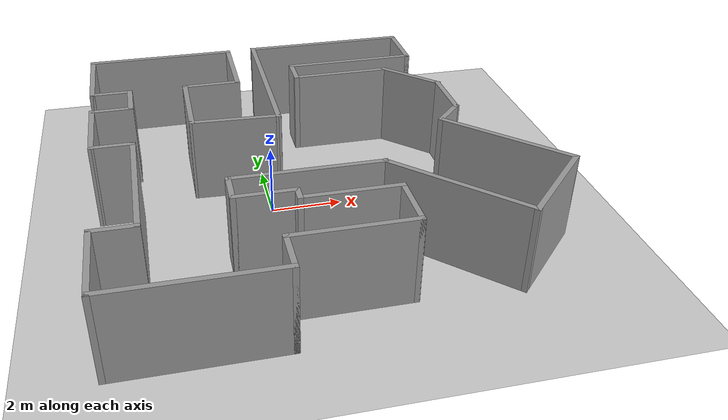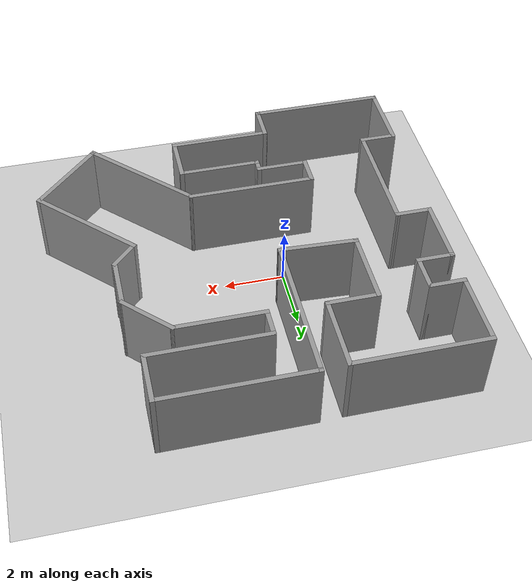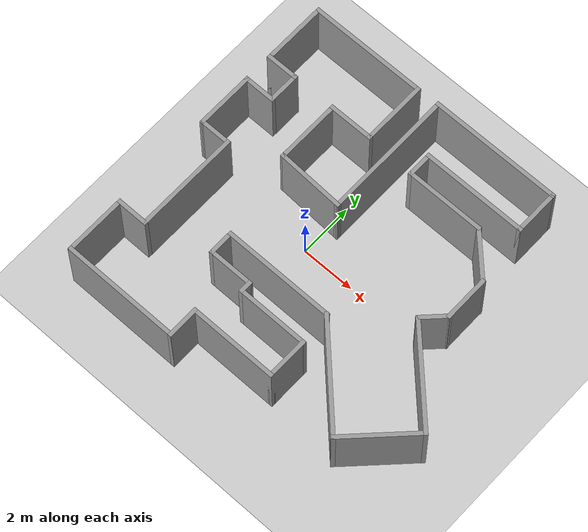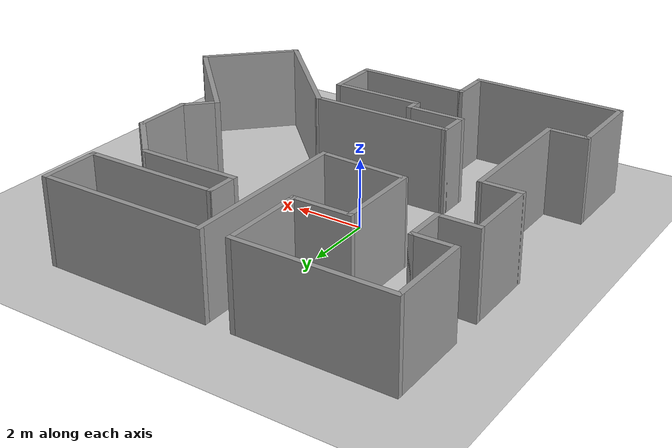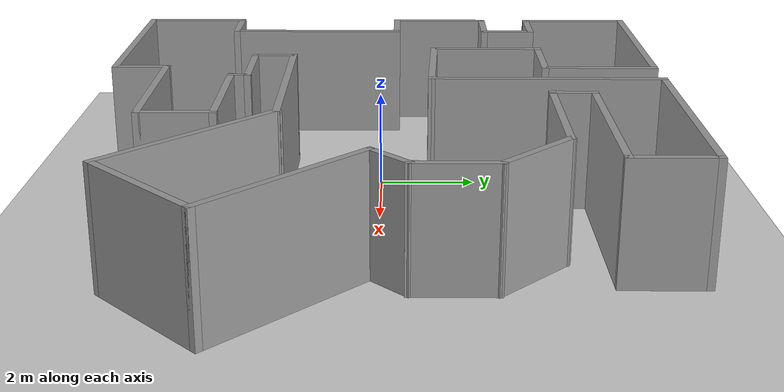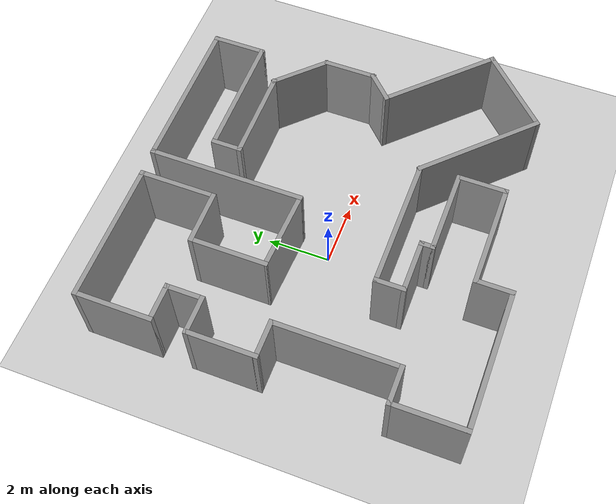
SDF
<sdf version="1.6">
 <world name="default">
  <light name="sun" type="directional">
   <pose>0 0 10 0 -0 0</pose>
   <diffuse>0.8 0.8 0.8 1</diffuse>
   <specular>0.1 0.1 0.1 1</specular>
   <attenuation>
    <range>1000</range>
    <constant>0.9</constant>
    <linear>0.01</linear>
    <quadratic>0.001</quadratic>
   </attenuation>
   <direction>-0.5 0.5 -1</direction>
  </light>
  <model name="ground_plane">
   <static>1</static>
   <link name="link">
    <collision name="collision">
     <geometry><plane><normal>0 0 1</normal><size>100 100</size></plane></geometry>
     <surface><friction><ode><mu>100</mu><mu2>50</mu2></ode></friction></surface>
    </collision>
    <visual name="visual">
     <cast_shadows>0</cast_shadows>
     <geometry><plane><normal>0 0 1</normal><size>100 100</size></plane></geometry>
     <material>
      <script><uri>file://media/materials/scripts/gazebo.material</uri><name>Gazebo/Grey</name></script>
     </material>
    </visual>
   </link>
  </model>
  <gravity>0 0 -9.8</gravity>
  <magnetic_field>6e-06 2.3e-05 -4.2e-05</magnetic_field>
  <atmosphere type="adiabatic"/>
  <physics name="default_physics" default="0" type="ode">
   <max_step_size>0.001</max_step_size>
   <real_time_factor>1</real_time_factor>
   <real_time_update_rate>1000</real_time_update_rate>
  </physics>
  <scene><ambient>0.4 0.4 0.4 1</ambient><background>0.7 0.7 0.7 1</background><shadows>1</shadows></scene>
  <spherical_coordinates>
   <surface_model>EARTH_WGS84</surface_model>
   <latitude_deg>0</latitude_deg>
   <longitude_deg>0</longitude_deg>
   <elevation>0</elevation>
   <heading_deg>0</heading_deg>
  </spherical_coordinates>
  <model name="map1">
   <pose>1.43298 0.085804 0 0 -0 0</pose>
   <link name="Wall_0">
    <collision name="Wall_0_Collision">
     <geometry><box><size>4.5 0.15 2.5</size></box></geometry>
     <pose>0 0 1.25 0 -0 0</pose>
    </collision>
    <visual name="Wall_0_Visual">
     <pose>0 0 1.25 0 -0 0</pose>
     <geometry><box><size>4.5 0.15 2.5</size></box></geometry>
     <material>
      <script><uri>file://media/materials/scripts/gazebo.material</uri><name>Gazebo/Grey</name></script>
      <ambient>1 1 1 1</ambient>
     </material>
    </visual>
    <pose>-4.03512 5.79408 0 0 -0 3.14159</pose>
   </link>
   <link name="Wall_1">
    <collision name="Wall_1_Collision">
     <geometry><box><size>2.5 0.15 2.5</size></box></geometry>
     <pose>0 0 1.25 0 -0 0</pose>
    </collision>
    <visual name="Wall_1_Visual">
     <pose>0 0 1.25 0 -0 0</pose>
     <geometry><box><size>2.5 0.15 2.5</size></box></geometry>
     <material>
      <script><uri>file://media/materials/scripts/gazebo.material</uri><name>Gazebo/Grey</name></script>
      <ambient>1 1 1 1</ambient>
     </material>
    </visual>
    <pose>-6.21012 4.61908 0 0 0 -1.5708</pose>
   </link>
   <link name="Wall_10">
    <collision name="Wall_10_Collision">
     <geometry><box><size>1.25 0.15 2.5</size></box></geometry>
     <pose>0 0 1.25 0 -0 0</pose>
    </collision>
    <visual name="Wall_10_Visual">
     <pose>0 0 1.25 0 -0 0</pose>
     <geometry><box><size>1.25 0.15 2.5</size></box></geometry>
     <material>
      <script><uri>file://media/materials/scripts/gazebo.material</uri><name>Gazebo/Grey</name></script>
      <ambient>1 1 1 1</ambient>
     </material>
    </visual>
    <pose>-5.66007 -3.6055 0 0 -0 3.14159</pose>
   </link>
   <link name="Wall_12">
    <collision name="Wall_12_Collision">
     <geometry><box><size>2.375 0.15 2.5</size></box></geometry>
     <pose>0 0 1.25 0 -0 0</pose>
    </collision>
    <visual name="Wall_12_Visual">
     <pose>0 0 1.25 0 -0 0</pose>
     <geometry><box><size>2.375 0.15 2.5</size></box></geometry>
     <material>
      <script><uri>file://media/materials/scripts/gazebo.material</uri><name>Gazebo/Grey</name></script>
      <ambient>1 1 1 1</ambient>
     </material>
    </visual>
    <pose>-6.21007 -4.718 0 0 0 -1.5708</pose>
   </link>
   <link name="Wall_14">
    <collision name="Wall_14_Collision">
     <geometry><box><size>4.5 0.15 2.5</size></box></geometry>
     <pose>0 0 1.25 0 -0 0</pose>
    </collision>
    <visual name="Wall_14_Visual">
     <pose>0 0 1.25 0 -0 0</pose>
     <geometry><box><size>4.5 0.15 2.5</size></box></geometry>
     <material>
      <script><uri>file://media/materials/scripts/gazebo.material</uri><name>Gazebo/Grey</name></script>
      <ambient>1 1 1 1</ambient>
     </material>
    </visual>
    <pose>-4.03507 -5.8305 0 0 -0 0</pose>
   </link>
   <link name="Wall_16">
    <collision name="Wall_16_Collision">
     <geometry><box><size>1.25 0.15 2.5</size></box></geometry>
     <pose>0 0 1.25 0 -0 0</pose>
    </collision>
    <visual name="Wall_16_Visual">
     <pose>0 0 1.25 0 -0 0</pose>
     <geometry><box><size>1.25 0.15 2.5</size></box></geometry>
     <material>
      <script><uri>file://media/materials/scripts/gazebo.material</uri><name>Gazebo/Grey</name></script>
      <ambient>1 1 1 1</ambient>
     </material>
    </visual>
    <pose>-1.86007 -5.2805 0 0 -0 1.5708</pose>
   </link>
   <link name="Wall_18">
    <collision name="Wall_18_Collision">
     <geometry><box><size>3.375 0.15 2.5</size></box></geometry>
     <pose>0 0 1.25 0 -0 0</pose>
    </collision>
    <visual name="Wall_18_Visual">
     <pose>0 0 1.25 0 -0 0</pose>
     <geometry><box><size>3.375 0.15 2.5</size></box></geometry>
     <material>
      <script><uri>file://media/materials/scripts/gazebo.material</uri><name>Gazebo/Grey</name></script>
      <ambient>1 1 1 1</ambient>
     </material>
    </visual>
    <pose>-0.247569 -4.7305 0 0 -0 0</pose>
   </link>
   <link name="Wall_2">
    <collision name="Wall_2_Collision">
     <geometry><box><size>1.25 0.15 2.5</size></box></geometry>
     <pose>0 0 1.25 0 -0 0</pose>
    </collision>
    <visual name="Wall_2_Visual">
     <pose>0 0 1.25 0 -0 0</pose>
     <geometry><box><size>1.25 0.15 2.5</size></box></geometry>
     <material>
      <script><uri>file://media/materials/scripts/gazebo.material</uri><name>Gazebo/Grey</name></script>
      <ambient>1 1 1 1</ambient>
     </material>
    </visual>
    <pose>-5.66012 3.44408 0 0 -0 0</pose>
   </link>
   <link name="Wall_20">
    <collision name="Wall_20_Collision">
     <geometry><box><size>1.625 0.15 2.5</size></box></geometry>
     <pose>0 0 1.25 0 -0 0</pose>
    </collision>
    <visual name="Wall_20_Visual">
     <pose>0 0 1.25 0 -0 0</pose>
     <geometry><box><size>1.625 0.15 2.5</size></box></geometry>
     <material>
      <script><uri>file://media/materials/scripts/gazebo.material</uri><name>Gazebo/Grey</name></script>
      <ambient>1 1 1 1</ambient>
     </material>
    </visual>
    <pose>1.36493 -3.993 0 0 -0 1.5708</pose>
   </link>
   <link name="Wall_22">
    <collision name="Wall_22_Collision">
     <geometry><box><size>2.75 0.15 2.5</size></box></geometry>
     <pose>0 0 1.25 0 -0 0</pose>
    </collision>
    <visual name="Wall_22_Visual">
     <pose>0 0 1.25 0 -0 0</pose>
     <geometry><box><size>2.75 0.15 2.5</size></box></geometry>
     <material>
      <script><uri>file://media/materials/scripts/gazebo.material</uri><name>Gazebo/Grey</name></script>
      <ambient>1 1 1 1</ambient>
     </material>
    </visual>
    <pose>0.064931 -3.2555 0 0 -0 3.14159</pose>
   </link>
   <link name="Wall_24">
    <collision name="Wall_24_Collision">
     <geometry><box><size>0.5 0.15 2.5</size></box></geometry>
     <pose>0 0 1.25 0 -0 0</pose>
    </collision>
    <visual name="Wall_24_Visual">
     <pose>0 0 1.25 0 -0 0</pose>
     <geometry><box><size>0.5 0.15 2.5</size></box></geometry>
     <material>
      <script><uri>file://media/materials/scripts/gazebo.material</uri><name>Gazebo/Grey</name></script>
      <ambient>1 1 1 1</ambient>
     </material>
    </visual>
    <pose>-1.23507 -3.0805 0 0 -0 1.5708</pose>
   </link>
   <link name="Wall_26">
    <collision name="Wall_26_Collision">
     <geometry><box><size>1.75 0.15 2.5</size></box></geometry>
     <pose>0 0 1.25 0 -0 0</pose>
    </collision>
    <visual name="Wall_26_Visual">
     <pose>0 0 1.25 0 -0 0</pose>
     <geometry><box><size>1.75 0.15 2.5</size></box></geometry>
     <material>
      <script><uri>file://media/materials/scripts/gazebo.material</uri><name>Gazebo/Grey</name></script>
      <ambient>1 1 1 1</ambient>
     </material>
    </visual>
    <pose>-2.03507 -2.9055 0 0 -0 3.14159</pose>
   </link>
   <link name="Wall_28">
    <collision name="Wall_28_Collision">
     <geometry><box><size>1 0.15 2.5</size></box></geometry>
     <pose>0 0 1.25 0 -0 0</pose>
    </collision>
    <visual name="Wall_28_Visual">
     <pose>0 0 1.25 0 -0 0</pose>
     <geometry><box><size>1 0.15 2.5</size></box></geometry>
     <material>
      <script><uri>file://media/materials/scripts/gazebo.material</uri><name>Gazebo/Grey</name></script>
      <ambient>1 1 1 1</ambient>
     </material>
    </visual>
    <pose>-2.83507 -2.4805 0 0 -0 1.5708</pose>
   </link>
   <link name="Wall_3">
    <collision name="Wall_3_Collision">
     <geometry><box><size>1.25 0.15 2.5</size></box></geometry>
     <pose>0 0 1.25 0 -0 0</pose>
    </collision>
    <visual name="Wall_3_Visual">
     <pose>0 0 1.25 0 -0 0</pose>
     <geometry><box><size>1.25 0.15 2.5</size></box></geometry>
     <material>
      <script><uri>file://media/materials/scripts/gazebo.material</uri><name>Gazebo/Grey</name></script>
      <ambient>1 1 1 1</ambient>
     </material>
    </visual>
    <pose>-5.11012 2.89408 0 0 0 -1.5708</pose>
   </link>
   <link name="Wall_30">
    <collision name="Wall_30_Collision">
     <geometry><box><size>4.25 0.15 2.5</size></box></geometry>
     <pose>0 0 1.25 0 -0 0</pose>
    </collision>
    <visual name="Wall_30_Visual">
     <pose>0 0 1.25 0 -0 0</pose>
     <geometry><box><size>4.25 0.15 2.5</size></box></geometry>
     <material>
      <script><uri>file://media/materials/scripts/gazebo.material</uri><name>Gazebo/Grey</name></script>
      <ambient>1 1 1 1</ambient>
     </material>
    </visual>
    <pose>-0.785069 -2.0555 0 0 -0 0</pose>
   </link>
   <link name="Wall_32">
    <collision name="Wall_32_Collision">
     <geometry><box><size>4.25 0.15 2.5</size></box></geometry>
     <pose>0 0 1.25 0 -0 0</pose>
    </collision>
    <visual name="Wall_32_Visual">
     <pose>0 0 1.25 0 -0 0</pose>
     <geometry><box><size>4.25 0.15 2.5</size></box></geometry>
     <material>
      <script><uri>file://media/materials/scripts/gazebo.material</uri><name>Gazebo/Grey</name></script>
      <ambient>1 1 1 1</ambient>
     </material>
    </visual>
    <pose>2.71443 -3.505 0 0 0 -0.785398</pose>
   </link>
   <link name="Wall_34">
    <collision name="Wall_34_Collision">
     <geometry><box><size>3 0.15 2.5</size></box></geometry>
     <pose>0 0 1.25 0 -0 0</pose>
    </collision>
    <visual name="Wall_34_Visual">
     <pose>0 0 1.25 0 -0 0</pose>
     <geometry><box><size>3 0.15 2.5</size></box></geometry>
     <material>
      <script><uri>file://media/materials/scripts/gazebo.material</uri><name>Gazebo/Grey</name></script>
      <ambient>1 1 1 1</ambient>
     </material>
    </visual>
    <pose>5.17143 -3.947 0 0 -0 0.785398</pose>
   </link>
   <link name="Wall_36">
    <collision name="Wall_36_Collision">
     <geometry><box><size>4 0.15 2.5</size></box></geometry>
     <pose>0 0 1.25 0 -0 0</pose>
    </collision>
    <visual name="Wall_36_Visual">
     <pose>0 0 1.25 0 -0 0</pose>
     <geometry><box><size>4 0.15 2.5</size></box></geometry>
     <material>
      <script><uri>file://media/materials/scripts/gazebo.material</uri><name>Gazebo/Grey</name></script>
      <ambient>1 1 1 1</ambient>
     </material>
    </visual>
    <pose>4.81775 -1.57832 0 0 -0 2.35619</pose>
   </link>
   <link name="Wall_38">
    <collision name="Wall_38_Collision">
     <geometry><box><size>1.125 0.15 2.5</size></box></geometry>
     <pose>0 0 1.25 0 -0 0</pose>
    </collision>
    <visual name="Wall_38_Visual">
     <pose>0 0 1.25 0 -0 0</pose>
     <geometry><box><size>1.125 0.15 2.5</size></box></geometry>
     <material>
      <script><uri>file://media/materials/scripts/gazebo.material</uri><name>Gazebo/Grey</name></script>
      <ambient>1 1 1 1</ambient>
     </material>
    </visual>
    <pose>3.80129 0.127576 0 0 -0 0.785398</pose>
   </link>
   <link name="Wall_4">
    <collision name="Wall_4_Collision">
     <geometry><box><size>1.25 0.15 2.5</size></box></geometry>
     <pose>0 0 1.25 0 -0 0</pose>
    </collision>
    <visual name="Wall_4_Visual">
     <pose>0 0 1.25 0 -0 0</pose>
     <geometry><box><size>1.25 0.15 2.5</size></box></geometry>
     <material>
      <script><uri>file://media/materials/scripts/gazebo.material</uri><name>Gazebo/Grey</name></script>
      <ambient>1 1 1 1</ambient>
     </material>
    </visual>
    <pose>-5.66012 2.34408 0 0 -0 3.14159</pose>
   </link>
   <link name="Wall_40">
    <collision name="Wall_40_Collision">
     <geometry><box><size>1.75 0.15 2.5</size></box></geometry>
     <pose>0 0 1.25 0 -0 0</pose>
    </collision>
    <visual name="Wall_40_Visual">
     <pose>0 0 1.25 0 -0 0</pose>
     <geometry><box><size>1.75 0.15 2.5</size></box></geometry>
     <material>
      <script><uri>file://media/materials/scripts/gazebo.material</uri><name>Gazebo/Grey</name></script>
      <ambient>1 1 1 1</ambient>
     </material>
    </visual>
    <pose>4.146 1.27229 0 0 -0 1.5708</pose>
   </link>
   <link name="Wall_42">
    <collision name="Wall_42_Collision">
     <geometry><box><size>2 0.15 2.5</size></box></geometry>
     <pose>0 0 1.25 0 -0 0</pose>
    </collision>
    <visual name="Wall_42_Visual">
     <pose>0 0 1.25 0 -0 0</pose>
     <geometry><box><size>2 0.15 2.5</size></box></geometry>
     <material>
      <script><uri>file://media/materials/scripts/gazebo.material</uri><name>Gazebo/Grey</name></script>
      <ambient>1 1 1 1</ambient>
     </material>
    </visual>
    <pose>3.49193 2.72636 0 0 -0 2.35619</pose>
   </link>
   <link name="Wall_44">
    <collision name="Wall_44_Collision">
     <geometry><box><size>3 0.15 2.5</size></box></geometry>
     <pose>0 0 1.25 0 -0 0</pose>
    </collision>
    <visual name="Wall_44_Visual">
     <pose>0 0 1.25 0 -0 0</pose>
     <geometry><box><size>3 0.15 2.5</size></box></geometry>
     <material>
      <script><uri>file://media/materials/scripts/gazebo.material</uri><name>Gazebo/Grey</name></script>
      <ambient>1 1 1 1</ambient>
     </material>
    </visual>
    <pose>1.41289 3.38047 0 0 -0 3.14157</pose>
   </link>
   <link name="Wall_47">
    <collision name="Wall_47_Collision">
     <geometry><box><size>1 0.15 2.5</size></box></geometry>
     <pose>0 0 1.25 0 -0 0</pose>
    </collision>
    <visual name="Wall_47_Visual">
     <pose>0 0 1.25 0 -0 0</pose>
     <geometry><box><size>1 0.15 2.5</size></box></geometry>
     <material>
      <script><uri>file://media/materials/scripts/gazebo.material</uri><name>Gazebo/Grey</name></script>
      <ambient>1 1 1 1</ambient>
     </material>
    </visual>
    <pose>-0.012069 3.8055 0 0 -0 1.5708</pose>
   </link>
   <link name="Wall_5">
    <collision name="Wall_5_Collision">
     <geometry><box><size>2.25 0.15 2.5</size></box></geometry>
     <pose>0 0 1.25 0 -0 0</pose>
    </collision>
    <visual name="Wall_5_Visual">
     <pose>0 0 1.25 0 -0 0</pose>
     <geometry><box><size>2.25 0.15 2.5</size></box></geometry>
     <material>
      <script><uri>file://media/materials/scripts/gazebo.material</uri><name>Gazebo/Grey</name></script>
      <ambient>1 1 1 1</ambient>
     </material>
    </visual>
    <pose>-6.21012 1.29408 0 0 0 -1.5708</pose>
   </link>
   <link name="Wall_50">
    <collision name="Wall_50_Collision">
     <geometry><box><size>4 0.15 2.5</size></box></geometry>
     <pose>0 0 1.25 0 -0 0</pose>
    </collision>
    <visual name="Wall_50_Visual">
     <pose>0 0 1.25 0 -0 0</pose>
     <geometry><box><size>4 0.15 2.5</size></box></geometry>
     <material>
      <script><uri>file://media/materials/scripts/gazebo.material</uri><name>Gazebo/Grey</name></script>
      <ambient>1 1 1 1</ambient>
     </material>
    </visual>
    <pose>1.91293 4.2305 0 0 -0 0</pose>
   </link>
   <link name="Wall_52">
    <collision name="Wall_52_Collision">
     <geometry><box><size>1.75 0.15 2.5</size></box></geometry>
     <pose>0 0 1.25 0 -0 0</pose>
    </collision>
    <visual name="Wall_52_Visual">
     <pose>0 0 1.25 0 -0 0</pose>
     <geometry><box><size>1.75 0.15 2.5</size></box></geometry>
     <material>
      <script><uri>file://media/materials/scripts/gazebo.material</uri><name>Gazebo/Grey</name></script>
      <ambient>1 1 1 1</ambient>
     </material>
    </visual>
    <pose>3.83793 5.0305 0 0 -0 1.5708</pose>
   </link>
   <link name="Wall_55">
    <collision name="Wall_55_Collision">
     <geometry><box><size>5 0.15 2.5</size></box></geometry>
     <pose>0 0 1.25 0 -0 0</pose>
    </collision>
    <visual name="Wall_55_Visual">
     <pose>0 0 1.25 0 -0 0</pose>
     <geometry><box><size>5 0.15 2.5</size></box></geometry>
     <material>
      <script><uri>file://media/materials/scripts/gazebo.material</uri><name>Gazebo/Grey</name></script>
      <ambient>1 1 1 1</ambient>
     </material>
    </visual>
    <pose>1.41293 5.8305 0 0 -0 3.14159</pose>
   </link>
   <link name="Wall_59">
    <collision name="Wall_59_Collision">
     <geometry><box><size>5 0.15 2.5</size></box></geometry>
     <pose>0 0 1.25 0 -0 0</pose>
    </collision>
    <visual name="Wall_59_Visual">
     <pose>0 0 1.25 0 -0 0</pose>
     <geometry><box><size>5 0.15 2.5</size></box></geometry>
     <material>
      <script><uri>file://media/materials/scripts/gazebo.material</uri><name>Gazebo/Grey</name></script>
      <ambient>1 1 1 1</ambient>
     </material>
    </visual>
    <pose>-1.01207 3.4055 0 0 0 -1.5708</pose>
   </link>
   <link name="Wall_6">
    <collision name="Wall_6_Collision">
     <geometry><box><size>1.25 0.15 2.5</size></box></geometry>
     <pose>0 0 1.25 0 -0 0</pose>
    </collision>
    <visual name="Wall_6_Visual">
     <pose>0 0 1.25 0 -0 0</pose>
     <geometry><box><size>1.25 0.15 2.5</size></box></geometry>
     <material>
      <script><uri>file://media/materials/scripts/gazebo.material</uri><name>Gazebo/Grey</name></script>
      <ambient>1 1 1 1</ambient>
     </material>
    </visual>
    <pose>-5.6601 0.244288 0 0 -0 0.000385</pose>
   </link>
   <link name="Wall_63">
    <collision name="Wall_63_Collision">
     <geometry><box><size>2.5 0.15 2.5</size></box></geometry>
     <pose>0 0 1.25 0 -0 0</pose>
    </collision>
    <visual name="Wall_63_Visual">
     <pose>0 0 1.25 0 -0 0</pose>
     <geometry><box><size>2.5 0.15 2.5</size></box></geometry>
     <material>
      <script><uri>file://media/materials/scripts/gazebo.material</uri><name>Gazebo/Grey</name></script>
      <ambient>1 1 1 1</ambient>
     </material>
    </visual>
    <pose>-1.86012 4.61908 0 0 0 -1.5708</pose>
   </link>
   <link name="Wall_66">
    <collision name="Wall_66_Collision">
     <geometry><box><size>1.75 0.15 2.5</size></box></geometry>
     <pose>0 0 1.25 0 -0 0</pose>
    </collision>
    <visual name="Wall_66_Visual">
     <pose>0 0 1.25 0 -0 0</pose>
     <geometry><box><size>1.75 0.15 2.5</size></box></geometry>
     <material>
      <script><uri>file://media/materials/scripts/gazebo.material</uri><name>Gazebo/Grey</name></script>
      <ambient>1 1 1 1</ambient>
     </material>
    </visual>
    <pose>-2.66012 3.44408 0 0 -0 3.14159</pose>
   </link>
   <link name="Wall_67">
    <collision name="Wall_67_Collision">
     <geometry><box><size>2.5 0.15 2.5</size></box></geometry>
     <pose>0 0 1.25 0 -0 0</pose>
    </collision>
    <visual name="Wall_67_Visual">
     <pose>0 0 1.25 0 -0 0</pose>
     <geometry><box><size>2.5 0.15 2.5</size></box></geometry>
     <material>
      <script><uri>file://media/materials/scripts/gazebo.material</uri><name>Gazebo/Grey</name></script>
      <ambient>1 1 1 1</ambient>
     </material>
    </visual>
    <pose>-3.46012 2.26908 0 0 0 -1.5708</pose>
   </link>
   <link name="Wall_70">
    <collision name="Wall_70_Collision">
     <geometry><box><size>2.60069 0.15 2.5</size></box></geometry>
     <pose>0 0 1.25 0 -0 0</pose>
    </collision>
    <visual name="Wall_70_Visual">
     <pose>0 0 1.25 0 -0 0</pose>
     <geometry><box><size>2.60069 0.15 2.5</size></box></geometry>
     <material>
      <script><uri>file://media/materials/scripts/gazebo.material</uri><name>Gazebo/Grey</name></script>
      <ambient>1 1 1 1</ambient>
     </material>
    </visual>
    <pose>-2.2361 1.03729 0 0 0 -0.046361</pose>
   </link>
   <link name="Wall_8">
    <collision name="Wall_8_Collision">
     <geometry><box><size>4 0.15 2.5</size></box></geometry>
     <pose>0 0 1.25 0 -0 0</pose>
    </collision>
    <visual name="Wall_8_Visual">
     <pose>0 0 1.25 0 -0 0</pose>
     <geometry><box><size>4 0.15 2.5</size></box></geometry>
     <material>
      <script><uri>file://media/materials/scripts/gazebo.material</uri><name>Gazebo/Grey</name></script>
      <ambient>1 1 1 1</ambient>
     </material>
    </visual>
    <pose>-5.11007 -1.6805 0 0 0 -1.5708</pose>
   </link>
   <static>1</static>
  </model>
 </world>
</sdf>
